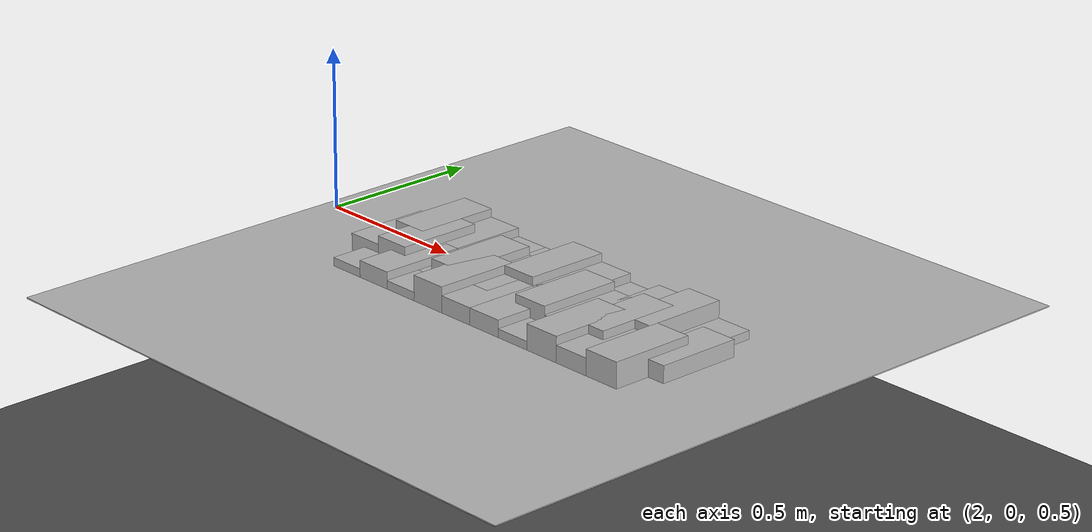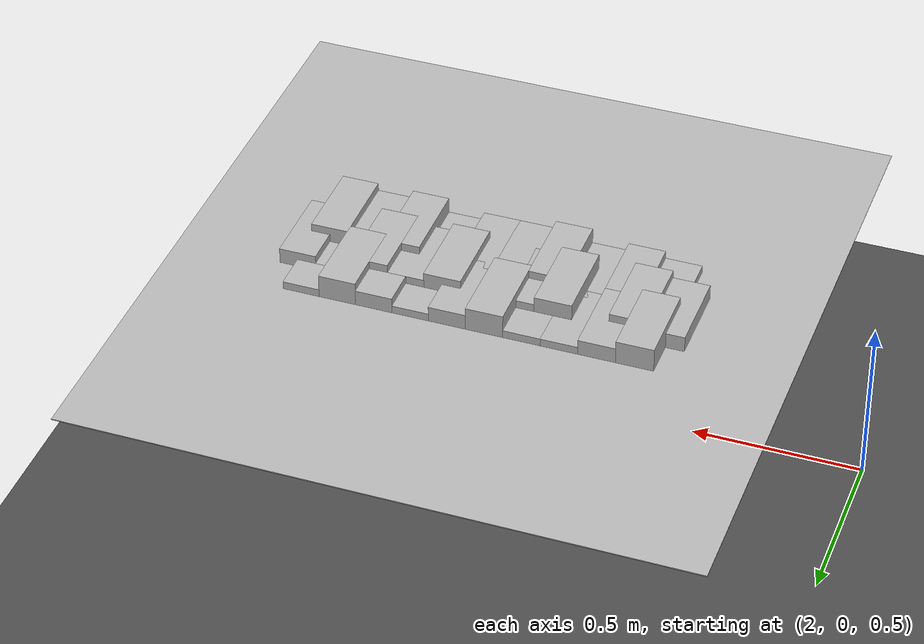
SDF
<sdf version="1.6">
 <world name="default">
  <model name="ground_plane">
   <static>1</static>
   <link name="link">
    <collision name="collision">
     <geometry><plane><normal>0 0 1</normal><size>100 100</size></plane></geometry>
     <surface><friction><ode><mu>100</mu><mu2>50</mu2></ode></friction></surface>
    </collision>
    <visual name="visual">
     <cast_shadows>0</cast_shadows>
     <geometry><plane><normal>0 0 1</normal><size>100 100</size></plane></geometry>
     <material>
      <script><uri>file://media/materials/scripts/gazebo.material</uri><name>Gazebo/Grey</name></script>
     </material>
    </visual>
   </link>
  </model>
  <model name="frc2016_roughterrain_0">
   <link name="link_clone_12">
    <pose>3.31002 -0.318042 -0.073164 0 -0 0</pose>
    <inertial>
     <inertia><ixx>nan</ixx><ixy>0</ixy><ixz>0</ixz><iyy>nan</iyy><iyz>0</iyz><izz>nan</izz></inertia>
     <mass>0</mass>
    </inertial>
    <visual name="row1_block5_md">
     <pose>0.05715 0.1143 0.10968 0 -0 0</pose>
     <geometry><box><size>0.115452 0.257474 0.0508</size></box></geometry>
     <material><shader type="pixel"/></material>
    </visual>
    <visual name="row1_block4_sm">
     <pose>0.17145 0.1143 0.09698 0 -0 0</pose>
     <geometry><box><size>0.115452 0.257474 0.0254</size></box></geometry>
     <material><shader type="pixel"/></material>
    </visual>
    <visual name="platform">
     <pose>0 0 0.08269 0 -0 0</pose>
     <geometry><box><size>1.91826 2.01688 0.003175</size></box></geometry>
     <material><shader type="pixel"/></material>
    </visual>
    <visual name="row1_block1_sm">
     <pose>0.51435 0.1143 0.09698 0 -0 0</pose>
     <geometry><box><size>0.115452 0.257474 0.0254</size></box></geometry>
     <material><shader type="pixel"/></material>
    </visual>
    <visual name="row1_block2_lg">
     <pose>0.40005 0.1143 0.12238 0 -0 0</pose>
     <geometry><box><size>0.115452 0.257474 0.0762</size></box></geometry>
     <material><shader type="pixel"/></material>
    </visual>
    <visual name="row1_block3_md">
     <pose>0.28575 0.1143 0.10968 0 -0 0</pose>
     <geometry><box><size>0.115452 0.257474 0.0508</size></box></geometry>
     <material><shader type="pixel"/></material>
    </visual>
    <visual name="row1_block6_lg">
     <pose>-0.05715 0.1143 0.12238 0 -0 0</pose>
     <geometry><box><size>0.115452 0.257474 0.0762</size></box></geometry>
     <material><shader type="pixel"/></material>
    </visual>
    <visual name="row1_block7_sm">
     <pose>-0.17145 0.1143 0.09698 0 -0 0</pose>
     <geometry><box><size>0.115452 0.257474 0.0254</size></box></geometry>
     <material><shader type="pixel"/></material>
    </visual>
    <visual name="row1_block9_md">
     <pose>-0.40005 0.1143 0.10968 0 -0 0</pose>
     <geometry><box><size>0.115452 0.257474 0.0508</size></box></geometry>
     <material><shader type="pixel"/></material>
    </visual>
    <visual name="row1_block8_sm">
     <pose>-0.28575 0.1143 0.09698 0 -0 0</pose>
     <geometry><box><size>0.115452 0.257474 0.0254</size></box></geometry>
     <material><shader type="pixel"/></material>
    </visual>
    <visual name="row1_block10_lg">
     <pose>-0.51435 0.1143 0.12238 0 -0 0</pose>
     <geometry><box><size>0.115452 0.257474 0.0762</size></box></geometry>
     <material><shader type="pixel"/></material>
    </visual>
    <visual name="row2_block1_md">
     <pose>0.5715 0 0.10968 0 -0 0</pose>
     <geometry><box><size>0.115452 0.257474 0.0508</size></box></geometry>
     <material><shader type="pixel"/></material>
    </visual>
    <visual name="row2_block2_sm">
     <pose>0.4572 0 0.09698 0 -0 0</pose>
     <geometry><box><size>0.115452 0.257474 0.0254</size></box></geometry>
     <material><shader type="pixel"/></material>
    </visual>
    <visual name="row2_block3_lg">
     <pose>0.3429 0 0.12238 0 -0 0</pose>
     <geometry><box><size>0.115452 0.257474 0.0762</size></box></geometry>
     <material><shader type="pixel"/></material>
    </visual>
    <visual name="row2_block4_md">
     <pose>0.2286 0 0.10968 0 -0 0</pose>
     <geometry><box><size>0.115452 0.257474 0.0508</size></box></geometry>
     <material><shader type="pixel"/></material>
    </visual>
    <visual name="row2_block5_lg">
     <pose>0.1143 0 0.12238 0 -0 0</pose>
     <geometry><box><size>0.115452 0.257474 0.0762</size></box></geometry>
     <material><shader type="pixel"/></material>
    </visual>
    <visual name="row2_block6_sm">
     <pose>0 0 0.09698 0 -0 0</pose>
     <geometry><box><size>0.115452 0.257474 0.0254</size></box></geometry>
     <material><shader type="pixel"/></material>
    </visual>
    <visual name="row2_block7_md">
     <pose>-0.1143 0 0.10968 0 -0 0</pose>
     <geometry><box><size>0.115452 0.257474 0.0508</size></box></geometry>
     <material><shader type="pixel"/></material>
    </visual>
    <visual name="row2_block8_lg">
     <pose>-0.2286 0 0.12238 0 -0 0</pose>
     <geometry><box><size>0.115452 0.257474 0.0762</size></box></geometry>
     <material><shader type="pixel"/></material>
    </visual>
    <visual name="row2_block9_sm">
     <pose>-0.3429 0 0.09698 0 -0 0</pose>
     <geometry><box><size>0.115452 0.257474 0.0254</size></box></geometry>
     <material><shader type="pixel"/></material>
    </visual>
    <visual name="row2_block10_lg">
     <pose>-0.4572 0 0.12238 0 -0 0</pose>
     <geometry><box><size>0.115452 0.257474 0.0762</size></box></geometry>
     <material><shader type="pixel"/></material>
    </visual>
    <visual name="row2_block11_md">
     <pose>-0.5715 0 0.10968 0 -0 0</pose>
     <geometry><box><size>0.115452 0.257474 0.0508</size></box></geometry>
     <material><shader type="pixel"/></material>
    </visual>
    <visual name="row3_block2_md">
     <pose>0.40005 -0.1143 0.10968 0 -0 0</pose>
     <geometry><box><size>0.115452 0.257474 0.0508</size></box></geometry>
     <material><shader type="pixel"/></material>
    </visual>
    <visual name="row3_block1_lg">
     <pose>0.51435 -0.1143 0.12238 0 -0 0</pose>
     <geometry><box><size>0.115452 0.257474 0.0762</size></box></geometry>
     <material><shader type="pixel"/></material>
    </visual>
    <visual name="row3_block3_lg">
     <pose>0.28575 -0.1143 0.12238 0 -0 0</pose>
     <geometry><box><size>0.115452 0.257474 0.0762</size></box></geometry>
     <material><shader type="pixel"/></material>
    </visual>
    <visual name="row3_block4_sm">
     <pose>0.17145 -0.1143 0.09698 0 -0 0</pose>
     <geometry><box><size>0.115452 0.257474 0.0254</size></box></geometry>
     <material><shader type="pixel"/></material>
    </visual>
    <visual name="row3_block5_md">
     <pose>0.05715 -0.1143 0.10968 0 -0 0</pose>
     <geometry><box><size>0.115452 0.257474 0.0508</size></box></geometry>
     <material><shader type="pixel"/></material>
    </visual>
    <visual name="row3_block6_md">
     <pose>-0.05715 -0.1143 0.10968 0 -0 0</pose>
     <geometry><box><size>0.115452 0.257474 0.0508</size></box></geometry>
     <material><shader type="pixel"/></material>
    </visual>
    <visual name="row3_block8_sm">
     <pose>-0.28575 -0.1143 0.09698 0 -0 0</pose>
     <geometry><box><size>0.115452 0.257474 0.0254</size></box></geometry>
     <material><shader type="pixel"/></material>
    </visual>
    <visual name="row3_block7_lg">
     <pose>-0.17145 -0.1143 0.12238 0 -0 0</pose>
     <geometry><box><size>0.115452 0.257474 0.0762</size></box></geometry>
     <material><shader type="pixel"/></material>
    </visual>
    <visual name="row3_block9_md">
     <pose>-0.40005 -0.1143 0.10968 0 -0 0</pose>
     <geometry><box><size>0.115452 0.257474 0.0508</size></box></geometry>
     <material><shader type="pixel"/></material>
    </visual>
    <visual name="row3_block10_sm">
     <pose>-0.51435 -0.1143 0.09698 0 -0 0</pose>
     <geometry><box><size>0.115452 0.257474 0.0254</size></box></geometry>
     <material><shader type="pixel"/></material>
    </visual>
    <collision name="row2_block5_lg_0">
     <pose>0.1143 0 0.12238 0 -0 0</pose>
     <geometry><box><size>0.115452 0.257474 0.0762</size></box></geometry>
     <surface>
      <friction>
       <ode><mu>1</mu><mu2>1</mu2><fdir1>0 0 0</fdir1><slip1>0</slip1><slip2>0</slip2></ode>
       <torsional>
        <coefficient>1</coefficient>
        <patch_radius>0</patch_radius>
        <surface_radius>0</surface_radius>
        <use_patch_radius>1</use_patch_radius>
        <ode><slip>0</slip></ode>
       </torsional>
      </friction>
      <bounce><restitution_coefficient>0</restitution_coefficient><threshold>1e+06</threshold></bounce>
      <contact>
       <collide_without_contact>0</collide_without_contact>
       <collide_without_contact_bitmask>1</collide_without_contact_bitmask>
       <collide_bitmask>1</collide_bitmask>
       <ode>
        <soft_cfm>0</soft_cfm>
        <soft_erp>0.2</soft_erp>
        <kp>1e+13</kp>
        <kd>1</kd>
        <max_vel>0.01</max_vel>
        <min_depth>0</min_depth>
       </ode>
       <bullet>
        <split_impulse>1</split_impulse>
        <split_impulse_penetration_threshold>-0.01</split_impulse_penetration_threshold>
        <soft_cfm>0</soft_cfm>
        <soft_erp>0.2</soft_erp>
        <kp>1e+13</kp>
        <kd>1</kd>
       </bullet>
      </contact>
     </surface>
    </collision>
    <collision name="platform_0">
     <pose>0 0 0.08269 0 -0 0</pose>
     <geometry><box><size>1.91826 2.01688 0.003175</size></box></geometry>
     <surface>
      <friction>
       <ode><mu>1</mu><mu2>1</mu2><fdir1>0 0 0</fdir1><slip1>0</slip1><slip2>0</slip2></ode>
       <torsional>
        <coefficient>1</coefficient>
        <patch_radius>0</patch_radius>
        <surface_radius>0</surface_radius>
        <use_patch_radius>1</use_patch_radius>
        <ode><slip>0</slip></ode>
       </torsional>
      </friction>
      <bounce><restitution_coefficient>0</restitution_coefficient><threshold>1e+06</threshold></bounce>
      <contact>
       <collide_without_contact>0</collide_without_contact>
       <collide_without_contact_bitmask>1</collide_without_contact_bitmask>
       <collide_bitmask>1</collide_bitmask>
       <ode>
        <soft_cfm>0</soft_cfm>
        <soft_erp>0.2</soft_erp>
        <kp>1e+13</kp>
        <kd>1</kd>
        <max_vel>0.01</max_vel>
        <min_depth>0</min_depth>
       </ode>
       <bullet>
        <split_impulse>1</split_impulse>
        <split_impulse_penetration_threshold>-0.01</split_impulse_penetration_threshold>
        <soft_cfm>0</soft_cfm>
        <soft_erp>0.2</soft_erp>
        <kp>1e+13</kp>
        <kd>1</kd>
       </bullet>
      </contact>
     </surface>
    </collision>
    <collision name="row1_block1_sm_0">
     <pose>0.51435 0.1143 0.09698 0 -0 0</pose>
     <geometry><box><size>0.115452 0.257474 0.0254</size></box></geometry>
     <surface>
      <friction>
       <ode><mu>1</mu><mu2>1</mu2><fdir1>0 0 0</fdir1><slip1>0</slip1><slip2>0</slip2></ode>
       <torsional>
        <coefficient>1</coefficient>
        <patch_radius>0</patch_radius>
        <surface_radius>0</surface_radius>
        <use_patch_radius>1</use_patch_radius>
        <ode><slip>0</slip></ode>
       </torsional>
      </friction>
      <bounce><restitution_coefficient>0</restitution_coefficient><threshold>1e+06</threshold></bounce>
      <contact>
       <collide_without_contact>0</collide_without_contact>
       <collide_without_contact_bitmask>1</collide_without_contact_bitmask>
       <collide_bitmask>1</collide_bitmask>
       <ode>
        <soft_cfm>0</soft_cfm>
        <soft_erp>0.2</soft_erp>
        <kp>1e+13</kp>
        <kd>1</kd>
        <max_vel>0.01</max_vel>
        <min_depth>0</min_depth>
       </ode>
       <bullet>
        <split_impulse>1</split_impulse>
        <split_impulse_penetration_threshold>-0.01</split_impulse_penetration_threshold>
        <soft_cfm>0</soft_cfm>
        <soft_erp>0.2</soft_erp>
        <kp>1e+13</kp>
        <kd>1</kd>
       </bullet>
      </contact>
     </surface>
    </collision>
    <collision name="row1_block3_md_0">
     <pose>0.28575 0.1143 0.10968 0 -0 0</pose>
     <geometry><box><size>0.115452 0.257474 0.0508</size></box></geometry>
     <surface>
      <friction>
       <ode><mu>1</mu><mu2>1</mu2><fdir1>0 0 0</fdir1><slip1>0</slip1><slip2>0</slip2></ode>
       <torsional>
        <coefficient>1</coefficient>
        <patch_radius>0</patch_radius>
        <surface_radius>0</surface_radius>
        <use_patch_radius>1</use_patch_radius>
        <ode><slip>0</slip></ode>
       </torsional>
      </friction>
      <bounce><restitution_coefficient>0</restitution_coefficient><threshold>1e+06</threshold></bounce>
      <contact>
       <collide_without_contact>0</collide_without_contact>
       <collide_without_contact_bitmask>1</collide_without_contact_bitmask>
       <collide_bitmask>1</collide_bitmask>
       <ode>
        <soft_cfm>0</soft_cfm>
        <soft_erp>0.2</soft_erp>
        <kp>1e+13</kp>
        <kd>1</kd>
        <max_vel>0.01</max_vel>
        <min_depth>0</min_depth>
       </ode>
       <bullet>
        <split_impulse>1</split_impulse>
        <split_impulse_penetration_threshold>-0.01</split_impulse_penetration_threshold>
        <soft_cfm>0</soft_cfm>
        <soft_erp>0.2</soft_erp>
        <kp>1e+13</kp>
        <kd>1</kd>
       </bullet>
      </contact>
     </surface>
    </collision>
    <collision name="row1_block2_lg_0">
     <pose>0.40005 0.1143 0.12238 0 -0 0</pose>
     <geometry><box><size>0.115452 0.257474 0.0762</size></box></geometry>
     <surface>
      <friction>
       <ode><mu>1</mu><mu2>1</mu2><fdir1>0 0 0</fdir1><slip1>0</slip1><slip2>0</slip2></ode>
       <torsional>
        <coefficient>1</coefficient>
        <patch_radius>0</patch_radius>
        <surface_radius>0</surface_radius>
        <use_patch_radius>1</use_patch_radius>
        <ode><slip>0</slip></ode>
       </torsional>
      </friction>
      <bounce><restitution_coefficient>0</restitution_coefficient><threshold>1e+06</threshold></bounce>
      <contact>
       <collide_without_contact>0</collide_without_contact>
       <collide_without_contact_bitmask>1</collide_without_contact_bitmask>
       <collide_bitmask>1</collide_bitmask>
       <ode>
        <soft_cfm>0</soft_cfm>
        <soft_erp>0.2</soft_erp>
        <kp>1e+13</kp>
        <kd>1</kd>
        <max_vel>0.01</max_vel>
        <min_depth>0</min_depth>
       </ode>
       <bullet>
        <split_impulse>1</split_impulse>
        <split_impulse_penetration_threshold>-0.01</split_impulse_penetration_threshold>
        <soft_cfm>0</soft_cfm>
        <soft_erp>0.2</soft_erp>
        <kp>1e+13</kp>
        <kd>1</kd>
       </bullet>
      </contact>
     </surface>
    </collision>
    <collision name="row1_block4_sm_0">
     <pose>0.17145 0.1143 0.09698 0 -0 0</pose>
     <geometry><box><size>0.115452 0.257474 0.0254</size></box></geometry>
     <surface>
      <friction>
       <ode><mu>1</mu><mu2>1</mu2><fdir1>0 0 0</fdir1><slip1>0</slip1><slip2>0</slip2></ode>
       <torsional>
        <coefficient>1</coefficient>
        <patch_radius>0</patch_radius>
        <surface_radius>0</surface_radius>
        <use_patch_radius>1</use_patch_radius>
        <ode><slip>0</slip></ode>
       </torsional>
      </friction>
      <bounce><restitution_coefficient>0</restitution_coefficient><threshold>1e+06</threshold></bounce>
      <contact>
       <collide_without_contact>0</collide_without_contact>
       <collide_without_contact_bitmask>1</collide_without_contact_bitmask>
       <collide_bitmask>1</collide_bitmask>
       <ode>
        <soft_cfm>0</soft_cfm>
        <soft_erp>0.2</soft_erp>
        <kp>1e+13</kp>
        <kd>1</kd>
        <max_vel>0.01</max_vel>
        <min_depth>0</min_depth>
       </ode>
       <bullet>
        <split_impulse>1</split_impulse>
        <split_impulse_penetration_threshold>-0.01</split_impulse_penetration_threshold>
        <soft_cfm>0</soft_cfm>
        <soft_erp>0.2</soft_erp>
        <kp>1e+13</kp>
        <kd>1</kd>
       </bullet>
      </contact>
     </surface>
    </collision>
    <collision name="row1_block5_md_0">
     <pose>0.05715 0.1143 0.10968 0 -0 0</pose>
     <geometry><box><size>0.115452 0.257474 0.0508</size></box></geometry>
     <surface>
      <friction>
       <ode><mu>1</mu><mu2>1</mu2><fdir1>0 0 0</fdir1><slip1>0</slip1><slip2>0</slip2></ode>
       <torsional>
        <coefficient>1</coefficient>
        <patch_radius>0</patch_radius>
        <surface_radius>0</surface_radius>
        <use_patch_radius>1</use_patch_radius>
        <ode><slip>0</slip></ode>
       </torsional>
      </friction>
      <bounce><restitution_coefficient>0</restitution_coefficient><threshold>1e+06</threshold></bounce>
      <contact>
       <collide_without_contact>0</collide_without_contact>
       <collide_without_contact_bitmask>1</collide_without_contact_bitmask>
       <collide_bitmask>1</collide_bitmask>
       <ode>
        <soft_cfm>0</soft_cfm>
        <soft_erp>0.2</soft_erp>
        <kp>1e+13</kp>
        <kd>1</kd>
        <max_vel>0.01</max_vel>
        <min_depth>0</min_depth>
       </ode>
       <bullet>
        <split_impulse>1</split_impulse>
        <split_impulse_penetration_threshold>-0.01</split_impulse_penetration_threshold>
        <soft_cfm>0</soft_cfm>
        <soft_erp>0.2</soft_erp>
        <kp>1e+13</kp>
        <kd>1</kd>
       </bullet>
      </contact>
     </surface>
    </collision>
    <collision name="row1_block6_lg_0">
     <pose>-0.05715 0.1143 0.12238 0 -0 0</pose>
     <geometry><box><size>0.115452 0.257474 0.0762</size></box></geometry>
     <surface>
      <friction>
       <ode><mu>1</mu><mu2>1</mu2><fdir1>0 0 0</fdir1><slip1>0</slip1><slip2>0</slip2></ode>
       <torsional>
        <coefficient>1</coefficient>
        <patch_radius>0</patch_radius>
        <surface_radius>0</surface_radius>
        <use_patch_radius>1</use_patch_radius>
        <ode><slip>0</slip></ode>
       </torsional>
      </friction>
      <bounce><restitution_coefficient>0</restitution_coefficient><threshold>1e+06</threshold></bounce>
      <contact>
       <collide_without_contact>0</collide_without_contact>
       <collide_without_contact_bitmask>1</collide_without_contact_bitmask>
       <collide_bitmask>1</collide_bitmask>
       <ode>
        <soft_cfm>0</soft_cfm>
        <soft_erp>0.2</soft_erp>
        <kp>1e+13</kp>
        <kd>1</kd>
        <max_vel>0.01</max_vel>
        <min_depth>0</min_depth>
       </ode>
       <bullet>
        <split_impulse>1</split_impulse>
        <split_impulse_penetration_threshold>-0.01</split_impulse_penetration_threshold>
        <soft_cfm>0</soft_cfm>
        <soft_erp>0.2</soft_erp>
        <kp>1e+13</kp>
        <kd>1</kd>
       </bullet>
      </contact>
     </surface>
    </collision>
    <collision name="row1_block7_sm_0">
     <pose>-0.17145 0.1143 0.09698 0 -0 0</pose>
     <geometry><box><size>0.115452 0.257474 0.0254</size></box></geometry>
     <surface>
      <friction>
       <ode><mu>1</mu><mu2>1</mu2><fdir1>0 0 0</fdir1><slip1>0</slip1><slip2>0</slip2></ode>
       <torsional>
        <coefficient>1</coefficient>
        <patch_radius>0</patch_radius>
        <surface_radius>0</surface_radius>
        <use_patch_radius>1</use_patch_radius>
        <ode><slip>0</slip></ode>
       </torsional>
      </friction>
      <bounce><restitution_coefficient>0</restitution_coefficient><threshold>1e+06</threshold></bounce>
      <contact>
       <collide_without_contact>0</collide_without_contact>
       <collide_without_contact_bitmask>1</collide_without_contact_bitmask>
       <collide_bitmask>1</collide_bitmask>
       <ode>
        <soft_cfm>0</soft_cfm>
        <soft_erp>0.2</soft_erp>
        <kp>1e+13</kp>
        <kd>1</kd>
        <max_vel>0.01</max_vel>
        <min_depth>0</min_depth>
       </ode>
       <bullet>
        <split_impulse>1</split_impulse>
        <split_impulse_penetration_threshold>-0.01</split_impulse_penetration_threshold>
        <soft_cfm>0</soft_cfm>
        <soft_erp>0.2</soft_erp>
        <kp>1e+13</kp>
        <kd>1</kd>
       </bullet>
      </contact>
     </surface>
    </collision>
    <collision name="row1_block8_sm_0">
     <pose>-0.28575 0.1143 0.09698 0 -0 0</pose>
     <geometry><box><size>0.115452 0.257474 0.0254</size></box></geometry>
     <surface>
      <friction>
       <ode><mu>1</mu><mu2>1</mu2><fdir1>0 0 0</fdir1><slip1>0</slip1><slip2>0</slip2></ode>
       <torsional>
        <coefficient>1</coefficient>
        <patch_radius>0</patch_radius>
        <surface_radius>0</surface_radius>
        <use_patch_radius>1</use_patch_radius>
        <ode><slip>0</slip></ode>
       </torsional>
      </friction>
      <bounce><restitution_coefficient>0</restitution_coefficient><threshold>1e+06</threshold></bounce>
      <contact>
       <collide_without_contact>0</collide_without_contact>
       <collide_without_contact_bitmask>1</collide_without_contact_bitmask>
       <collide_bitmask>1</collide_bitmask>
       <ode>
        <soft_cfm>0</soft_cfm>
        <soft_erp>0.2</soft_erp>
        <kp>1e+13</kp>
        <kd>1</kd>
        <max_vel>0.01</max_vel>
        <min_depth>0</min_depth>
       </ode>
       <bullet>
        <split_impulse>1</split_impulse>
        <split_impulse_penetration_threshold>-0.01</split_impulse_penetration_threshold>
        <soft_cfm>0</soft_cfm>
        <soft_erp>0.2</soft_erp>
        <kp>1e+13</kp>
        <kd>1</kd>
       </bullet>
      </contact>
     </surface>
    </collision>
    <collision name="row1_block10_lg_0">
     <pose>-0.51435 0.1143 0.12238 0 -0 0</pose>
     <geometry><box><size>0.115452 0.257474 0.0762</size></box></geometry>
     <surface>
      <friction>
       <ode><mu>1</mu><mu2>1</mu2><fdir1>0 0 0</fdir1><slip1>0</slip1><slip2>0</slip2></ode>
       <torsional>
        <coefficient>1</coefficient>
        <patch_radius>0</patch_radius>
        <surface_radius>0</surface_radius>
        <use_patch_radius>1</use_patch_radius>
        <ode><slip>0</slip></ode>
       </torsional>
      </friction>
      <bounce><restitution_coefficient>0</restitution_coefficient><threshold>1e+06</threshold></bounce>
      <contact>
       <collide_without_contact>0</collide_without_contact>
       <collide_without_contact_bitmask>1</collide_without_contact_bitmask>
       <collide_bitmask>1</collide_bitmask>
       <ode>
        <soft_cfm>0</soft_cfm>
        <soft_erp>0.2</soft_erp>
        <kp>1e+13</kp>
        <kd>1</kd>
        <max_vel>0.01</max_vel>
        <min_depth>0</min_depth>
       </ode>
       <bullet>
        <split_impulse>1</split_impulse>
        <split_impulse_penetration_threshold>-0.01</split_impulse_penetration_threshold>
        <soft_cfm>0</soft_cfm>
        <soft_erp>0.2</soft_erp>
        <kp>1e+13</kp>
        <kd>1</kd>
       </bullet>
      </contact>
     </surface>
    </collision>
    <collision name="row1_block9_md_0">
     <pose>-0.40005 0.1143 0.10968 0 -0 0</pose>
     <geometry><box><size>0.115452 0.257474 0.0508</size></box></geometry>
     <surface>
      <friction>
       <ode><mu>1</mu><mu2>1</mu2><fdir1>0 0 0</fdir1><slip1>0</slip1><slip2>0</slip2></ode>
       <torsional>
        <coefficient>1</coefficient>
        <patch_radius>0</patch_radius>
        <surface_radius>0</surface_radius>
        <use_patch_radius>1</use_patch_radius>
        <ode><slip>0</slip></ode>
       </torsional>
      </friction>
      <bounce><restitution_coefficient>0</restitution_coefficient><threshold>1e+06</threshold></bounce>
      <contact>
       <collide_without_contact>0</collide_without_contact>
       <collide_without_contact_bitmask>1</collide_without_contact_bitmask>
       <collide_bitmask>1</collide_bitmask>
       <ode>
        <soft_cfm>0</soft_cfm>
        <soft_erp>0.2</soft_erp>
        <kp>1e+13</kp>
        <kd>1</kd>
        <max_vel>0.01</max_vel>
        <min_depth>0</min_depth>
       </ode>
       <bullet>
        <split_impulse>1</split_impulse>
        <split_impulse_penetration_threshold>-0.01</split_impulse_penetration_threshold>
        <soft_cfm>0</soft_cfm>
        <soft_erp>0.2</soft_erp>
        <kp>1e+13</kp>
        <kd>1</kd>
       </bullet>
      </contact>
     </surface>
    </collision>
    <collision name="row2_block1_md_0">
     <pose>0.5715 0 0.10968 0 -0 0</pose>
     <geometry><box><size>0.115452 0.257474 0.0508</size></box></geometry>
     <surface>
      <friction>
       <ode><mu>1</mu><mu2>1</mu2><fdir1>0 0 0</fdir1><slip1>0</slip1><slip2>0</slip2></ode>
       <torsional>
        <coefficient>1</coefficient>
        <patch_radius>0</patch_radius>
        <surface_radius>0</surface_radius>
        <use_patch_radius>1</use_patch_radius>
        <ode><slip>0</slip></ode>
       </torsional>
      </friction>
      <bounce><restitution_coefficient>0</restitution_coefficient><threshold>1e+06</threshold></bounce>
      <contact>
       <collide_without_contact>0</collide_without_contact>
       <collide_without_contact_bitmask>1</collide_without_contact_bitmask>
       <collide_bitmask>1</collide_bitmask>
       <ode>
        <soft_cfm>0</soft_cfm>
        <soft_erp>0.2</soft_erp>
        <kp>1e+13</kp>
        <kd>1</kd>
        <max_vel>0.01</max_vel>
        <min_depth>0</min_depth>
       </ode>
       <bullet>
        <split_impulse>1</split_impulse>
        <split_impulse_penetration_threshold>-0.01</split_impulse_penetration_threshold>
        <soft_cfm>0</soft_cfm>
        <soft_erp>0.2</soft_erp>
        <kp>1e+13</kp>
        <kd>1</kd>
       </bullet>
      </contact>
     </surface>
    </collision>
    <collision name="row2_block2_sm_0">
     <pose>0.4572 0 0.09698 0 -0 0</pose>
     <geometry><box><size>0.115452 0.257474 0.0254</size></box></geometry>
     <surface>
      <friction>
       <ode><mu>1</mu><mu2>1</mu2><fdir1>0 0 0</fdir1><slip1>0</slip1><slip2>0</slip2></ode>
       <torsional>
        <coefficient>1</coefficient>
        <patch_radius>0</patch_radius>
        <surface_radius>0</surface_radius>
        <use_patch_radius>1</use_patch_radius>
        <ode><slip>0</slip></ode>
       </torsional>
      </friction>
      <bounce><restitution_coefficient>0</restitution_coefficient><threshold>1e+06</threshold></bounce>
      <contact>
       <collide_without_contact>0</collide_without_contact>
       <collide_without_contact_bitmask>1</collide_without_contact_bitmask>
       <collide_bitmask>1</collide_bitmask>
       <ode>
        <soft_cfm>0</soft_cfm>
        <soft_erp>0.2</soft_erp>
        <kp>1e+13</kp>
        <kd>1</kd>
        <max_vel>0.01</max_vel>
        <min_depth>0</min_depth>
       </ode>
       <bullet>
        <split_impulse>1</split_impulse>
        <split_impulse_penetration_threshold>-0.01</split_impulse_penetration_threshold>
        <soft_cfm>0</soft_cfm>
        <soft_erp>0.2</soft_erp>
        <kp>1e+13</kp>
        <kd>1</kd>
       </bullet>
      </contact>
     </surface>
    </collision>
    <collision name="row2_block4_md_0">
     <pose>0.2286 0 0.10968 0 -0 0</pose>
     <geometry><box><size>0.115452 0.257474 0.0508</size></box></geometry>
     <surface>
      <friction>
       <ode><mu>1</mu><mu2>1</mu2><fdir1>0 0 0</fdir1><slip1>0</slip1><slip2>0</slip2></ode>
       <torsional>
        <coefficient>1</coefficient>
        <patch_radius>0</patch_radius>
        <surface_radius>0</surface_radius>
        <use_patch_radius>1</use_patch_radius>
        <ode><slip>0</slip></ode>
       </torsional>
      </friction>
      <bounce><restitution_coefficient>0</restitution_coefficient><threshold>1e+06</threshold></bounce>
      <contact>
       <collide_without_contact>0</collide_without_contact>
       <collide_without_contact_bitmask>1</collide_without_contact_bitmask>
       <collide_bitmask>1</collide_bitmask>
       <ode>
        <soft_cfm>0</soft_cfm>
        <soft_erp>0.2</soft_erp>
        <kp>1e+13</kp>
        <kd>1</kd>
        <max_vel>0.01</max_vel>
        <min_depth>0</min_depth>
       </ode>
       <bullet>
        <split_impulse>1</split_impulse>
        <split_impulse_penetration_threshold>-0.01</split_impulse_penetration_threshold>
        <soft_cfm>0</soft_cfm>
        <soft_erp>0.2</soft_erp>
        <kp>1e+13</kp>
        <kd>1</kd>
       </bullet>
      </contact>
     </surface>
    </collision>
    <collision name="row2_block3_lg_0">
     <pose>0.3429 0 0.12238 0 -0 0</pose>
     <geometry><box><size>0.115452 0.257474 0.0762</size></box></geometry>
     <surface>
      <friction>
       <ode><mu>1</mu><mu2>1</mu2><fdir1>0 0 0</fdir1><slip1>0</slip1><slip2>0</slip2></ode>
       <torsional>
        <coefficient>1</coefficient>
        <patch_radius>0</patch_radius>
        <surface_radius>0</surface_radius>
        <use_patch_radius>1</use_patch_radius>
        <ode><slip>0</slip></ode>
       </torsional>
      </friction>
      <bounce><restitution_coefficient>0</restitution_coefficient><threshold>1e+06</threshold></bounce>
      <contact>
       <collide_without_contact>0</collide_without_contact>
       <collide_without_contact_bitmask>1</collide_without_contact_bitmask>
       <collide_bitmask>1</collide_bitmask>
       <ode>
        <soft_cfm>0</soft_cfm>
        <soft_erp>0.2</soft_erp>
        <kp>1e+13</kp>
        <kd>1</kd>
        <max_vel>0.01</max_vel>
        <min_depth>0</min_depth>
       </ode>
       <bullet>
        <split_impulse>1</split_impulse>
        <split_impulse_penetration_threshold>-0.01</split_impulse_penetration_threshold>
        <soft_cfm>0</soft_cfm>
        <soft_erp>0.2</soft_erp>
        <kp>1e+13</kp>
        <kd>1</kd>
       </bullet>
      </contact>
     </surface>
    </collision>
    <collision name="row2_block6_sm_0">
     <pose>0 0 0.09698 0 -0 0</pose>
     <geometry><box><size>0.115452 0.257474 0.0254</size></box></geometry>
     <surface>
      <friction>
       <ode><mu>1</mu><mu2>1</mu2><fdir1>0 0 0</fdir1><slip1>0</slip1><slip2>0</slip2></ode>
       <torsional>
        <coefficient>1</coefficient>
        <patch_radius>0</patch_radius>
        <surface_radius>0</surface_radius>
        <use_patch_radius>1</use_patch_radius>
        <ode><slip>0</slip></ode>
       </torsional>
      </friction>
      <bounce><restitution_coefficient>0</restitution_coefficient><threshold>1e+06</threshold></bounce>
      <contact>
       <collide_without_contact>0</collide_without_contact>
       <collide_without_contact_bitmask>1</collide_without_contact_bitmask>
       <collide_bitmask>1</collide_bitmask>
       <ode>
        <soft_cfm>0</soft_cfm>
        <soft_erp>0.2</soft_erp>
        <kp>1e+13</kp>
        <kd>1</kd>
        <max_vel>0.01</max_vel>
        <min_depth>0</min_depth>
       </ode>
       <bullet>
        <split_impulse>1</split_impulse>
        <split_impulse_penetration_threshold>-0.01</split_impulse_penetration_threshold>
        <soft_cfm>0</soft_cfm>
        <soft_erp>0.2</soft_erp>
        <kp>1e+13</kp>
        <kd>1</kd>
       </bullet>
      </contact>
     </surface>
    </collision>
    <collision name="row2_block7_md_0">
     <pose>-0.1143 0 0.10968 0 -0 0</pose>
     <geometry><box><size>0.115452 0.257474 0.0508</size></box></geometry>
     <surface>
      <friction>
       <ode><mu>1</mu><mu2>1</mu2><fdir1>0 0 0</fdir1><slip1>0</slip1><slip2>0</slip2></ode>
       <torsional>
        <coefficient>1</coefficient>
        <patch_radius>0</patch_radius>
        <surface_radius>0</surface_radius>
        <use_patch_radius>1</use_patch_radius>
        <ode><slip>0</slip></ode>
       </torsional>
      </friction>
      <bounce><restitution_coefficient>0</restitution_coefficient><threshold>1e+06</threshold></bounce>
      <contact>
       <collide_without_contact>0</collide_without_contact>
       <collide_without_contact_bitmask>1</collide_without_contact_bitmask>
       <collide_bitmask>1</collide_bitmask>
       <ode>
        <soft_cfm>0</soft_cfm>
        <soft_erp>0.2</soft_erp>
        <kp>1e+13</kp>
        <kd>1</kd>
        <max_vel>0.01</max_vel>
        <min_depth>0</min_depth>
       </ode>
       <bullet>
        <split_impulse>1</split_impulse>
        <split_impulse_penetration_threshold>-0.01</split_impulse_penetration_threshold>
        <soft_cfm>0</soft_cfm>
        <soft_erp>0.2</soft_erp>
        <kp>1e+13</kp>
        <kd>1</kd>
       </bullet>
      </contact>
     </surface>
    </collision>
    <collision name="row2_block10_lg_0">
     <pose>-0.4572 0 0.12238 0 -0 0</pose>
     <geometry><box><size>0.115452 0.257474 0.0762</size></box></geometry>
     <surface>
      <friction>
       <ode><mu>1</mu><mu2>1</mu2><fdir1>0 0 0</fdir1><slip1>0</slip1><slip2>0</slip2></ode>
       <torsional>
        <coefficient>1</coefficient>
        <patch_radius>0</patch_radius>
        <surface_radius>0</surface_radius>
        <use_patch_radius>1</use_patch_radius>
        <ode><slip>0</slip></ode>
       </torsional>
      </friction>
      <bounce><restitution_coefficient>0</restitution_coefficient><threshold>1e+06</threshold></bounce>
      <contact>
       <collide_without_contact>0</collide_without_contact>
       <collide_without_contact_bitmask>1</collide_without_contact_bitmask>
       <collide_bitmask>1</collide_bitmask>
       <ode>
        <soft_cfm>0</soft_cfm>
        <soft_erp>0.2</soft_erp>
        <kp>1e+13</kp>
        <kd>1</kd>
        <max_vel>0.01</max_vel>
        <min_depth>0</min_depth>
       </ode>
       <bullet>
        <split_impulse>1</split_impulse>
        <split_impulse_penetration_threshold>-0.01</split_impulse_penetration_threshold>
        <soft_cfm>0</soft_cfm>
        <soft_erp>0.2</soft_erp>
        <kp>1e+13</kp>
        <kd>1</kd>
       </bullet>
      </contact>
     </surface>
    </collision>
    <collision name="row2_block11_md_0">
     <pose>-0.5715 0 0.10968 0 -0 0</pose>
     <geometry><box><size>0.115452 0.257474 0.0508</size></box></geometry>
     <surface>
      <friction>
       <ode><mu>1</mu><mu2>1</mu2><fdir1>0 0 0</fdir1><slip1>0</slip1><slip2>0</slip2></ode>
       <torsional>
        <coefficient>1</coefficient>
        <patch_radius>0</patch_radius>
        <surface_radius>0</surface_radius>
        <use_patch_radius>1</use_patch_radius>
        <ode><slip>0</slip></ode>
       </torsional>
      </friction>
      <bounce><restitution_coefficient>0</restitution_coefficient><threshold>1e+06</threshold></bounce>
      <contact>
       <collide_without_contact>0</collide_without_contact>
       <collide_without_contact_bitmask>1</collide_without_contact_bitmask>
       <collide_bitmask>1</collide_bitmask>
       <ode>
        <soft_cfm>0</soft_cfm>
        <soft_erp>0.2</soft_erp>
        <kp>1e+13</kp>
        <kd>1</kd>
        <max_vel>0.01</max_vel>
        <min_depth>0</min_depth>
       </ode>
       <bullet>
        <split_impulse>1</split_impulse>
        <split_impulse_penetration_threshold>-0.01</split_impulse_penetration_threshold>
        <soft_cfm>0</soft_cfm>
        <soft_erp>0.2</soft_erp>
        <kp>1e+13</kp>
        <kd>1</kd>
       </bullet>
      </contact>
     </surface>
    </collision>
    <collision name="row2_block8_lg_0">
     <pose>-0.2286 0 0.12238 0 -0 0</pose>
     <geometry><box><size>0.115452 0.257474 0.0762</size></box></geometry>
     <surface>
      <friction>
       <ode><mu>1</mu><mu2>1</mu2><fdir1>0 0 0</fdir1><slip1>0</slip1><slip2>0</slip2></ode>
       <torsional>
        <coefficient>1</coefficient>
        <patch_radius>0</patch_radius>
        <surface_radius>0</surface_radius>
        <use_patch_radius>1</use_patch_radius>
        <ode><slip>0</slip></ode>
       </torsional>
      </friction>
      <bounce><restitution_coefficient>0</restitution_coefficient><threshold>1e+06</threshold></bounce>
      <contact>
       <collide_without_contact>0</collide_without_contact>
       <collide_without_contact_bitmask>1</collide_without_contact_bitmask>
       <collide_bitmask>1</collide_bitmask>
       <ode>
        <soft_cfm>0</soft_cfm>
        <soft_erp>0.2</soft_erp>
        <kp>1e+13</kp>
        <kd>1</kd>
        <max_vel>0.01</max_vel>
        <min_depth>0</min_depth>
       </ode>
       <bullet>
        <split_impulse>1</split_impulse>
        <split_impulse_penetration_threshold>-0.01</split_impulse_penetration_threshold>
        <soft_cfm>0</soft_cfm>
        <soft_erp>0.2</soft_erp>
        <kp>1e+13</kp>
        <kd>1</kd>
       </bullet>
      </contact>
     </surface>
    </collision>
    <collision name="row2_block9_sm_0">
     <pose>-0.3429 0 0.09698 0 -0 0</pose>
     <geometry><box><size>0.115452 0.257474 0.0254</size></box></geometry>
     <surface>
      <friction>
       <ode><mu>1</mu><mu2>1</mu2><fdir1>0 0 0</fdir1><slip1>0</slip1><slip2>0</slip2></ode>
       <torsional>
        <coefficient>1</coefficient>
        <patch_radius>0</patch_radius>
        <surface_radius>0</surface_radius>
        <use_patch_radius>1</use_patch_radius>
        <ode><slip>0</slip></ode>
       </torsional>
      </friction>
      <bounce><restitution_coefficient>0</restitution_coefficient><threshold>1e+06</threshold></bounce>
      <contact>
       <collide_without_contact>0</collide_without_contact>
       <collide_without_contact_bitmask>1</collide_without_contact_bitmask>
       <collide_bitmask>1</collide_bitmask>
       <ode>
        <soft_cfm>0</soft_cfm>
        <soft_erp>0.2</soft_erp>
        <kp>1e+13</kp>
        <kd>1</kd>
        <max_vel>0.01</max_vel>
        <min_depth>0</min_depth>
       </ode>
       <bullet>
        <split_impulse>1</split_impulse>
        <split_impulse_penetration_threshold>-0.01</split_impulse_penetration_threshold>
        <soft_cfm>0</soft_cfm>
        <soft_erp>0.2</soft_erp>
        <kp>1e+13</kp>
        <kd>1</kd>
       </bullet>
      </contact>
     </surface>
    </collision>
    <collision name="row3_block2_md_0">
     <pose>0.40005 -0.1143 0.10968 0 -0 0</pose>
     <geometry><box><size>0.115452 0.257474 0.0508</size></box></geometry>
     <surface>
      <friction>
       <ode><mu>1</mu><mu2>1</mu2><fdir1>0 0 0</fdir1><slip1>0</slip1><slip2>0</slip2></ode>
       <torsional>
        <coefficient>1</coefficient>
        <patch_radius>0</patch_radius>
        <surface_radius>0</surface_radius>
        <use_patch_radius>1</use_patch_radius>
        <ode><slip>0</slip></ode>
       </torsional>
      </friction>
      <bounce><restitution_coefficient>0</restitution_coefficient><threshold>1e+06</threshold></bounce>
      <contact>
       <collide_without_contact>0</collide_without_contact>
       <collide_without_contact_bitmask>1</collide_without_contact_bitmask>
       <collide_bitmask>1</collide_bitmask>
       <ode>
        <soft_cfm>0</soft_cfm>
        <soft_erp>0.2</soft_erp>
        <kp>1e+13</kp>
        <kd>1</kd>
        <max_vel>0.01</max_vel>
        <min_depth>0</min_depth>
       </ode>
       <bullet>
        <split_impulse>1</split_impulse>
        <split_impulse_penetration_threshold>-0.01</split_impulse_penetration_threshold>
        <soft_cfm>0</soft_cfm>
        <soft_erp>0.2</soft_erp>
        <kp>1e+13</kp>
        <kd>1</kd>
       </bullet>
      </contact>
     </surface>
    </collision>
    <collision name="row3_block1_lg_0">
     <pose>0.51435 -0.1143 0.12238 0 -0 0</pose>
     <geometry><box><size>0.115452 0.257474 0.0762</size></box></geometry>
     <surface>
      <friction>
       <ode><mu>1</mu><mu2>1</mu2><fdir1>0 0 0</fdir1><slip1>0</slip1><slip2>0</slip2></ode>
       <torsional>
        <coefficient>1</coefficient>
        <patch_radius>0</patch_radius>
        <surface_radius>0</surface_radius>
        <use_patch_radius>1</use_patch_radius>
        <ode><slip>0</slip></ode>
       </torsional>
      </friction>
      <bounce><restitution_coefficient>0</restitution_coefficient><threshold>1e+06</threshold></bounce>
      <contact>
       <collide_without_contact>0</collide_without_contact>
       <collide_without_contact_bitmask>1</collide_without_contact_bitmask>
       <collide_bitmask>1</collide_bitmask>
       <ode>
        <soft_cfm>0</soft_cfm>
        <soft_erp>0.2</soft_erp>
        <kp>1e+13</kp>
        <kd>1</kd>
        <max_vel>0.01</max_vel>
        <min_depth>0</min_depth>
       </ode>
       <bullet>
        <split_impulse>1</split_impulse>
        <split_impulse_penetration_threshold>-0.01</split_impulse_penetration_threshold>
        <soft_cfm>0</soft_cfm>
        <soft_erp>0.2</soft_erp>
        <kp>1e+13</kp>
        <kd>1</kd>
       </bullet>
      </contact>
     </surface>
    </collision>
    <collision name="row3_block4_sm_0">
     <pose>0.17145 -0.1143 0.09698 0 -0 0</pose>
     <geometry><box><size>0.115452 0.257474 0.0254</size></box></geometry>
     <surface>
      <friction>
       <ode><mu>1</mu><mu2>1</mu2><fdir1>0 0 0</fdir1><slip1>0</slip1><slip2>0</slip2></ode>
       <torsional>
        <coefficient>1</coefficient>
        <patch_radius>0</patch_radius>
        <surface_radius>0</surface_radius>
        <use_patch_radius>1</use_patch_radius>
        <ode><slip>0</slip></ode>
       </torsional>
      </friction>
      <bounce><restitution_coefficient>0</restitution_coefficient><threshold>1e+06</threshold></bounce>
      <contact>
       <collide_without_contact>0</collide_without_contact>
       <collide_without_contact_bitmask>1</collide_without_contact_bitmask>
       <collide_bitmask>1</collide_bitmask>
       <ode>
        <soft_cfm>0</soft_cfm>
        <soft_erp>0.2</soft_erp>
        <kp>1e+13</kp>
        <kd>1</kd>
        <max_vel>0.01</max_vel>
        <min_depth>0</min_depth>
       </ode>
       <bullet>
        <split_impulse>1</split_impulse>
        <split_impulse_penetration_threshold>-0.01</split_impulse_penetration_threshold>
        <soft_cfm>0</soft_cfm>
        <soft_erp>0.2</soft_erp>
        <kp>1e+13</kp>
        <kd>1</kd>
       </bullet>
      </contact>
     </surface>
    </collision>
    <collision name="row3_block3_lg_0">
     <pose>0.28575 -0.1143 0.12238 0 -0 0</pose>
     <geometry><box><size>0.115452 0.257474 0.0762</size></box></geometry>
     <surface>
      <friction>
       <ode><mu>1</mu><mu2>1</mu2><fdir1>0 0 0</fdir1><slip1>0</slip1><slip2>0</slip2></ode>
       <torsional>
        <coefficient>1</coefficient>
        <patch_radius>0</patch_radius>
        <surface_radius>0</surface_radius>
        <use_patch_radius>1</use_patch_radius>
        <ode><slip>0</slip></ode>
       </torsional>
      </friction>
      <bounce><restitution_coefficient>0</restitution_coefficient><threshold>1e+06</threshold></bounce>
      <contact>
       <collide_without_contact>0</collide_without_contact>
       <collide_without_contact_bitmask>1</collide_without_contact_bitmask>
       <collide_bitmask>1</collide_bitmask>
       <ode>
        <soft_cfm>0</soft_cfm>
        <soft_erp>0.2</soft_erp>
        <kp>1e+13</kp>
        <kd>1</kd>
        <max_vel>0.01</max_vel>
        <min_depth>0</min_depth>
       </ode>
       <bullet>
        <split_impulse>1</split_impulse>
        <split_impulse_penetration_threshold>-0.01</split_impulse_penetration_threshold>
        <soft_cfm>0</soft_cfm>
        <soft_erp>0.2</soft_erp>
        <kp>1e+13</kp>
        <kd>1</kd>
       </bullet>
      </contact>
     </surface>
    </collision>
    <collision name="row3_block5_md_0">
     <pose>0.05715 -0.1143 0.10968 0 -0 0</pose>
     <geometry><box><size>0.115452 0.257474 0.0508</size></box></geometry>
     <surface>
      <friction>
       <ode><mu>1</mu><mu2>1</mu2><fdir1>0 0 0</fdir1><slip1>0</slip1><slip2>0</slip2></ode>
       <torsional>
        <coefficient>1</coefficient>
        <patch_radius>0</patch_radius>
        <surface_radius>0</surface_radius>
        <use_patch_radius>1</use_patch_radius>
        <ode><slip>0</slip></ode>
       </torsional>
      </friction>
      <bounce><restitution_coefficient>0</restitution_coefficient><threshold>1e+06</threshold></bounce>
      <contact>
       <collide_without_contact>0</collide_without_contact>
       <collide_without_contact_bitmask>1</collide_without_contact_bitmask>
       <collide_bitmask>1</collide_bitmask>
       <ode>
        <soft_cfm>0</soft_cfm>
        <soft_erp>0.2</soft_erp>
        <kp>1e+13</kp>
        <kd>1</kd>
        <max_vel>0.01</max_vel>
        <min_depth>0</min_depth>
       </ode>
       <bullet>
        <split_impulse>1</split_impulse>
        <split_impulse_penetration_threshold>-0.01</split_impulse_penetration_threshold>
        <soft_cfm>0</soft_cfm>
        <soft_erp>0.2</soft_erp>
        <kp>1e+13</kp>
        <kd>1</kd>
       </bullet>
      </contact>
     </surface>
    </collision>
    <collision name="row3_block7_lg_0">
     <pose>-0.17145 -0.1143 0.12238 0 -0 0</pose>
     <geometry><box><size>0.115452 0.257474 0.0762</size></box></geometry>
     <surface>
      <friction>
       <ode><mu>1</mu><mu2>1</mu2><fdir1>0 0 0</fdir1><slip1>0</slip1><slip2>0</slip2></ode>
       <torsional>
        <coefficient>1</coefficient>
        <patch_radius>0</patch_radius>
        <surface_radius>0</surface_radius>
        <use_patch_radius>1</use_patch_radius>
        <ode><slip>0</slip></ode>
       </torsional>
      </friction>
      <bounce><restitution_coefficient>0</restitution_coefficient><threshold>1e+06</threshold></bounce>
      <contact>
       <collide_without_contact>0</collide_without_contact>
       <collide_without_contact_bitmask>1</collide_without_contact_bitmask>
       <collide_bitmask>1</collide_bitmask>
       <ode>
        <soft_cfm>0</soft_cfm>
        <soft_erp>0.2</soft_erp>
        <kp>1e+13</kp>
        <kd>1</kd>
        <max_vel>0.01</max_vel>
        <min_depth>0</min_depth>
       </ode>
       <bullet>
        <split_impulse>1</split_impulse>
        <split_impulse_penetration_threshold>-0.01</split_impulse_penetration_threshold>
        <soft_cfm>0</soft_cfm>
        <soft_erp>0.2</soft_erp>
        <kp>1e+13</kp>
        <kd>1</kd>
       </bullet>
      </contact>
     </surface>
    </collision>
    <collision name="row3_block6_md_0">
     <pose>-0.05715 -0.1143 0.10968 0 -0 0</pose>
     <geometry><box><size>0.115452 0.257474 0.0508</size></box></geometry>
     <surface>
      <friction>
       <ode><mu>1</mu><mu2>1</mu2><fdir1>0 0 0</fdir1><slip1>0</slip1><slip2>0</slip2></ode>
       <torsional>
        <coefficient>1</coefficient>
        <patch_radius>0</patch_radius>
        <surface_radius>0</surface_radius>
        <use_patch_radius>1</use_patch_radius>
        <ode><slip>0</slip></ode>
       </torsional>
      </friction>
      <bounce><restitution_coefficient>0</restitution_coefficient><threshold>1e+06</threshold></bounce>
      <contact>
       <collide_without_contact>0</collide_without_contact>
       <collide_without_contact_bitmask>1</collide_without_contact_bitmask>
       <collide_bitmask>1</collide_bitmask>
       <ode>
        <soft_cfm>0</soft_cfm>
        <soft_erp>0.2</soft_erp>
        <kp>1e+13</kp>
        <kd>1</kd>
        <max_vel>0.01</max_vel>
        <min_depth>0</min_depth>
       </ode>
       <bullet>
        <split_impulse>1</split_impulse>
        <split_impulse_penetration_threshold>-0.01</split_impulse_penetration_threshold>
        <soft_cfm>0</soft_cfm>
        <soft_erp>0.2</soft_erp>
        <kp>1e+13</kp>
        <kd>1</kd>
       </bullet>
      </contact>
     </surface>
    </collision>
    <collision name="row3_block10_sm_0">
     <pose>-0.51435 -0.1143 0.09698 0 -0 0</pose>
     <geometry><box><size>0.115452 0.257474 0.0254</size></box></geometry>
     <surface>
      <friction>
       <ode><mu>1</mu><mu2>1</mu2><fdir1>0 0 0</fdir1><slip1>0</slip1><slip2>0</slip2></ode>
       <torsional>
        <coefficient>1</coefficient>
        <patch_radius>0</patch_radius>
        <surface_radius>0</surface_radius>
        <use_patch_radius>1</use_patch_radius>
        <ode><slip>0</slip></ode>
       </torsional>
      </friction>
      <bounce><restitution_coefficient>0</restitution_coefficient><threshold>1e+06</threshold></bounce>
      <contact>
       <collide_without_contact>0</collide_without_contact>
       <collide_without_contact_bitmask>1</collide_without_contact_bitmask>
       <collide_bitmask>1</collide_bitmask>
       <ode>
        <soft_cfm>0</soft_cfm>
        <soft_erp>0.2</soft_erp>
        <kp>1e+13</kp>
        <kd>1</kd>
        <max_vel>0.01</max_vel>
        <min_depth>0</min_depth>
       </ode>
       <bullet>
        <split_impulse>1</split_impulse>
        <split_impulse_penetration_threshold>-0.01</split_impulse_penetration_threshold>
        <soft_cfm>0</soft_cfm>
        <soft_erp>0.2</soft_erp>
        <kp>1e+13</kp>
        <kd>1</kd>
       </bullet>
      </contact>
     </surface>
    </collision>
    <collision name="row3_block8_sm_0">
     <pose>-0.28575 -0.1143 0.09698 0 -0 0</pose>
     <geometry><box><size>0.115452 0.257474 0.0254</size></box></geometry>
     <surface>
      <friction>
       <ode><mu>1</mu><mu2>1</mu2><fdir1>0 0 0</fdir1><slip1>0</slip1><slip2>0</slip2></ode>
       <torsional>
        <coefficient>1</coefficient>
        <patch_radius>0</patch_radius>
        <surface_radius>0</surface_radius>
        <use_patch_radius>1</use_patch_radius>
        <ode><slip>0</slip></ode>
       </torsional>
      </friction>
      <bounce><restitution_coefficient>0</restitution_coefficient><threshold>1e+06</threshold></bounce>
      <contact>
       <collide_without_contact>0</collide_without_contact>
       <collide_without_contact_bitmask>1</collide_without_contact_bitmask>
       <collide_bitmask>1</collide_bitmask>
       <ode>
        <soft_cfm>0</soft_cfm>
        <soft_erp>0.2</soft_erp>
        <kp>1e+13</kp>
        <kd>1</kd>
        <max_vel>0.01</max_vel>
        <min_depth>0</min_depth>
       </ode>
       <bullet>
        <split_impulse>1</split_impulse>
        <split_impulse_penetration_threshold>-0.01</split_impulse_penetration_threshold>
        <soft_cfm>0</soft_cfm>
        <soft_erp>0.2</soft_erp>
        <kp>1e+13</kp>
        <kd>1</kd>
       </bullet>
      </contact>
     </surface>
    </collision>
    <collision name="row3_block9_md_0">
     <pose>-0.40005 -0.1143 0.10968 0 -0 0</pose>
     <geometry><box><size>0.115452 0.257474 0.0508</size></box></geometry>
     <surface>
      <friction>
       <ode><mu>1</mu><mu2>1</mu2><fdir1>0 0 0</fdir1><slip1>0</slip1><slip2>0</slip2></ode>
       <torsional>
        <coefficient>1</coefficient>
        <patch_radius>0</patch_radius>
        <surface_radius>0</surface_radius>
        <use_patch_radius>1</use_patch_radius>
        <ode><slip>0</slip></ode>
       </torsional>
      </friction>
      <bounce><restitution_coefficient>0</restitution_coefficient><threshold>1e+06</threshold></bounce>
      <contact>
       <collide_without_contact>0</collide_without_contact>
       <collide_without_contact_bitmask>1</collide_without_contact_bitmask>
       <collide_bitmask>1</collide_bitmask>
       <ode>
        <soft_cfm>0</soft_cfm>
        <soft_erp>0.2</soft_erp>
        <kp>1e+13</kp>
        <kd>1</kd>
        <max_vel>0.01</max_vel>
        <min_depth>0</min_depth>
       </ode>
       <bullet>
        <split_impulse>1</split_impulse>
        <split_impulse_penetration_threshold>-0.01</split_impulse_penetration_threshold>
        <soft_cfm>0</soft_cfm>
        <soft_erp>0.2</soft_erp>
        <kp>1e+13</kp>
        <kd>1</kd>
       </bullet>
      </contact>
     </surface>
    </collision>
   </link>
   <static>1</static>
   <pose>-0.10114 0.027351 0.636987 0 -0 0</pose>
  </model>
  <model name="asphalt_plane">
   <static>1</static>
   <link name="link">
    <collision name="collision"><geometry><box><size>20 20 0.1</size></box></geometry></collision>
    <visual name="visual">
     <cast_shadows>0</cast_shadows>
     <geometry><box><size>20 20 0.1</size></box></geometry>
     <material>
      <script>
       <uri>model://asphalt_plane/materials/scripts</uri>
       <uri>model://asphalt_plane/materials/textures</uri>
       <name>vrc/asphalt</name>
      </script>
     </material>
    </visual>
   </link>
   <pose>0.537328 0.29075 -0.013118 0 -0 0</pose>
  </model>
 </world>
</sdf>
